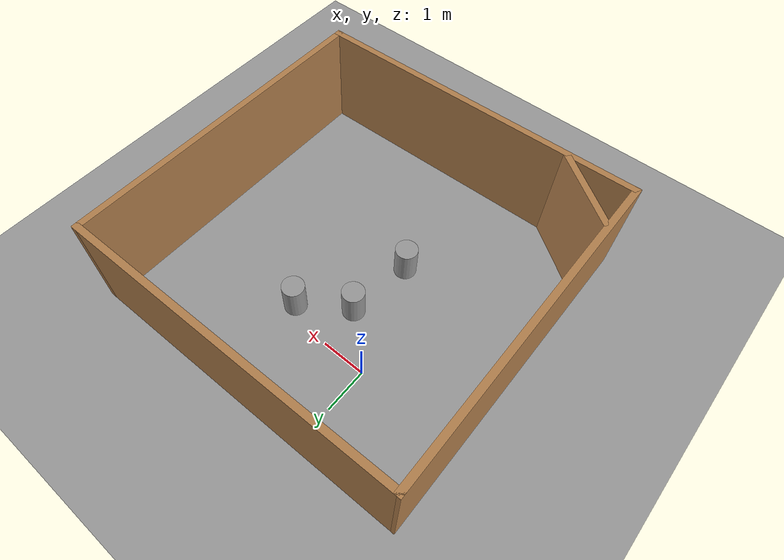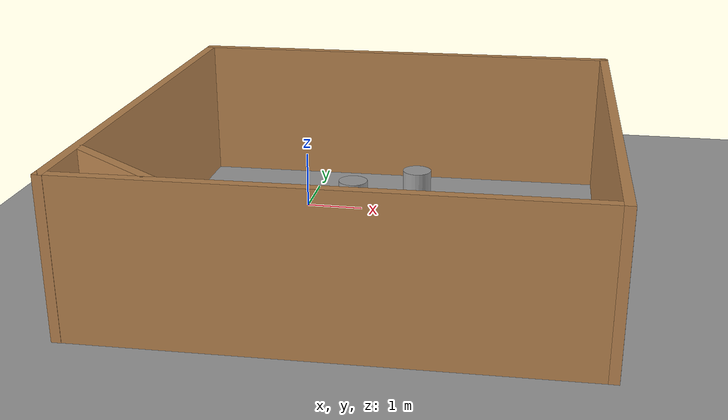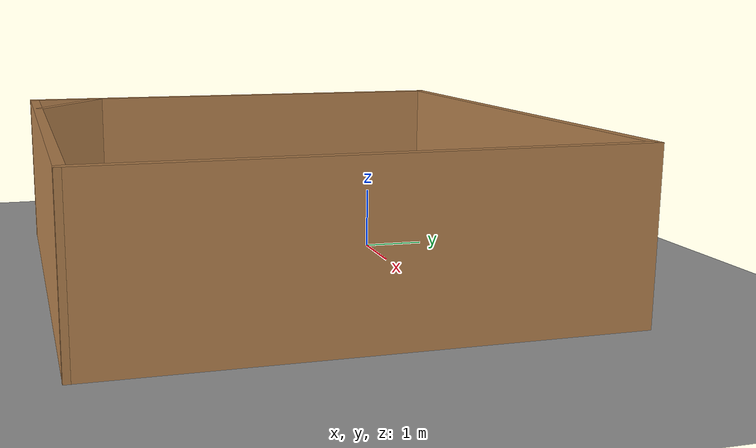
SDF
<?xml version='1.0'?>
<sdf version='1.7'>
  <model name='three_pillars'>
    <link name='Wall_87'>
      <pose>-1.55442 -4.97404 0 0 0 -0.624849</pose>
      <self_collide>0</self_collide>
      <kinematic>0</kinematic>
      <enable_wind>0</enable_wind>
      <gravity>1</gravity>
      <inertial>
        <mass>1.86085</mass>
        <pose>0 0 0 0 -0 0</pose>
        <inertia>
          <ixx>0.972681</ixx>
          <ixy>0</ixy>
          <ixz>0</ixz>
          <iyy>1.50617</iyy>
          <iyz>0</iyz>
          <izz>0.540464</izz>
        </inertia>
      </inertial>
      <visual name='Wall_87_Visual'>
        <pose>0 0 1.25 0 -0 0</pose>
        <geometry>
          <box>
            <size>1.86085 0.15 2.5</size>
          </box>
        </geometry>
        <material>
          <script>
            <uri>file://media/materials/scripts/gazebo.material</uri>
            <name>Gazebo/Wood</name>
          </script>
          <ambient>1 1 1 1</ambient>
          <diffuse>1 1 1 1</diffuse>
          <specular>0.2 0.2 0.2 1</specular>
          <emissive>0 0 0 1</emissive>
          <shader type='pixel'>
            <normal_map>__default__</normal_map>
          </shader>
        </material>
        <cast_shadows>1</cast_shadows>
        <transparency>0</transparency>
      </visual>
      <collision name='Wall_87_Collision'>
        <laser_retro>0</laser_retro>
        <max_contacts>10</max_contacts>
        <pose>0 0 1.25 0 -0 0</pose>
        <geometry>
          <box>
            <size>1.86085 0.15 2.5</size>
          </box>
        </geometry>
        <surface>
          <friction>
            <ode>
              <mu>1</mu>
              <mu2>1</mu2>
              <fdir1>0 0 0</fdir1>
              <slip1>0</slip1>
              <slip2>0</slip2>
            </ode>
            <torsional>
              <coefficient>1</coefficient>
              <patch_radius>0</patch_radius>
              <surface_radius>0</surface_radius>
              <use_patch_radius>1</use_patch_radius>
              <ode>
                <slip>0</slip>
              </ode>
            </torsional>
          </friction>
          <bounce>
            <restitution_coefficient>0</restitution_coefficient>
            <threshold>1e+06</threshold>
          </bounce>
          <contact>
            <collide_without_contact>0</collide_without_contact>
            <collide_without_contact_bitmask>1</collide_without_contact_bitmask>
            <collide_bitmask>1</collide_bitmask>
            <ode>
              <soft_cfm>0</soft_cfm>
              <soft_erp>0.2</soft_erp>
              <kp>1e+13</kp>
              <kd>1</kd>
              <max_vel>0.01</max_vel>
              <min_depth>0</min_depth>
            </ode>
            <bullet>
              <split_impulse>1</split_impulse>
              <split_impulse_penetration_threshold>-0.01</split_impulse_penetration_threshold>
              <soft_cfm>0</soft_cfm>
              <soft_erp>0.2</soft_erp>
              <kp>1e+13</kp>
              <kd>1</kd>
            </bullet>
          </contact>
        </surface>
      </collision>
    </link>
    <link name='Wall_93_clone'>
      <pose>5.29879 -1.68588 0 0 0 -1.5708</pose>
      <self_collide>0</self_collide>
      <kinematic>0</kinematic>
      <enable_wind>0</enable_wind>
      <gravity>1</gravity>
      <inertial>
        <mass>1.44767</mass>
        <pose>0 0 0 0 -0 0</pose>
        <inertia>
          <ixx>0.756709</ixx>
          <ixy>0</ixy>
          <ixz>0</ixz>
          <iyy>7.72259</iyy>
          <iyz>0</iyz>
          <izz>6.97131</izz>
        </inertia>
      </inertial>
      <visual name='Wall_93_Visual'>
        <pose>0 0 1.25 0 -0 0</pose>
        <geometry>
          <box>
            <size>7.60026 0.15 2.5</size>
          </box>
        </geometry>
        <material>
          <script>
            <uri>file://media/materials/scripts/gazebo.material</uri>
            <name>Gazebo/Wood</name>
          </script>
          <ambient>1 1 1 1</ambient>
          <diffuse>1 1 1 1</diffuse>
          <specular>0.2 0.2 0.2 1</specular>
          <emissive>0 0 0 1</emissive>
          <shader type='pixel'>
            <normal_map>__default__</normal_map>
          </shader>
        </material>
        <cast_shadows>1</cast_shadows>
        <transparency>0</transparency>
      </visual>
      <collision name='Wall_93_Collision'>
        <laser_retro>0</laser_retro>
        <max_contacts>10</max_contacts>
        <pose>0 0 1.25 0 -0 0</pose>
        <geometry>
          <box>
            <size>7.60026 0.15 2.5</size>
          </box>
        </geometry>
        <surface>
          <friction>
            <ode>
              <mu>1</mu>
              <mu2>1</mu2>
              <fdir1>0 0 0</fdir1>
              <slip1>0</slip1>
              <slip2>0</slip2>
            </ode>
            <torsional>
              <coefficient>1</coefficient>
              <patch_radius>0</patch_radius>
              <surface_radius>0</surface_radius>
              <use_patch_radius>1</use_patch_radius>
              <ode>
                <slip>0</slip>
              </ode>
            </torsional>
          </friction>
          <bounce>
            <restitution_coefficient>0</restitution_coefficient>
            <threshold>1e+06</threshold>
          </bounce>
          <contact>
            <collide_without_contact>0</collide_without_contact>
            <collide_without_contact_bitmask>1</collide_without_contact_bitmask>
            <collide_bitmask>1</collide_bitmask>
            <ode>
              <soft_cfm>0</soft_cfm>
              <soft_erp>0.2</soft_erp>
              <kp>1e+13</kp>
              <kd>1</kd>
              <max_vel>0.01</max_vel>
              <min_depth>0</min_depth>
            </ode>
            <bullet>
              <split_impulse>1</split_impulse>
              <split_impulse_penetration_threshold>-0.01</split_impulse_penetration_threshold>
              <soft_cfm>0</soft_cfm>
              <soft_erp>0.2</soft_erp>
              <kp>1e+13</kp>
              <kd>1</kd>
            </bullet>
          </contact>
        </surface>
      </collision>
    </link>
    <link name='Wall_93_clone_clone'>
      <pose>1.48219 1.95907 0 0 -0 0.020613</pose>
      <self_collide>0</self_collide>
      <kinematic>0</kinematic>
      <enable_wind>0</enable_wind>
      <inertial>
        <inertia>
          <ixx>0</ixx>
          <ixy>0</ixy>
          <ixz>0</ixz>
          <iyy>0</iyy>
          <iyz>0</iyz>
          <izz>0</izz>
        </inertia>
        <mass>0</mass>
        <pose>0 0 0 0 -0 0</pose>
      </inertial>
      <visual name='Wall_93_Visual'>
        <pose>0 0 1.25 0 -0 0</pose>
        <geometry>
          <box>
            <size>7.78179 0.15 2.5</size>
          </box>
        </geometry>
        <material>
          <script>
            <uri>file://media/materials/scripts/gazebo.material</uri>
            <name>Gazebo/Wood</name>
          </script>
          <ambient>1 1 1 1</ambient>
          <diffuse>1 1 1 1</diffuse>
          <specular>0.2 0.2 0.2 1</specular>
          <emissive>0 0 0 1</emissive>
          <shader type='pixel'/>
        </material>
        <cast_shadows>1</cast_shadows>
        <transparency>0</transparency>
      </visual>
      <collision name='Wall_93_Collision'>
        <laser_retro>0</laser_retro>
        <max_contacts>10</max_contacts>
        <pose>0 0 1.25 0 -0 0</pose>
        <geometry>
          <box>
            <size>7.78179 0.15 2.5</size>
          </box>
        </geometry>
        <surface>
          <friction>
            <ode>
              <mu>1</mu>
              <mu2>1</mu2>
              <fdir1>0 0 0</fdir1>
              <slip1>0</slip1>
              <slip2>0</slip2>
            </ode>
            <torsional>
              <coefficient>1</coefficient>
              <patch_radius>0</patch_radius>
              <surface_radius>0</surface_radius>
              <use_patch_radius>1</use_patch_radius>
              <ode>
                <slip>0</slip>
              </ode>
            </torsional>
          </friction>
          <bounce>
            <restitution_coefficient>0</restitution_coefficient>
            <threshold>1e+06</threshold>
          </bounce>
          <contact>
            <collide_without_contact>0</collide_without_contact>
            <collide_without_contact_bitmask>1</collide_without_contact_bitmask>
            <collide_bitmask>1</collide_bitmask>
            <ode>
              <soft_cfm>0</soft_cfm>
              <soft_erp>0.2</soft_erp>
              <kp>1e+13</kp>
              <kd>1</kd>
              <max_vel>0.01</max_vel>
              <min_depth>0</min_depth>
            </ode>
            <bullet>
              <split_impulse>1</split_impulse>
              <split_impulse_penetration_threshold>-0.01</split_impulse_penetration_threshold>
              <soft_cfm>0</soft_cfm>
              <soft_erp>0.2</soft_erp>
              <kp>1e+13</kp>
              <kd>1</kd>
            </bullet>
          </contact>
        </surface>
      </collision>
    </link>
    <link name='Wall_93_clone_clone_0'>
      <pose>-2.33541 -1.84455 0 0 0 -1.5708</pose>
      <self_collide>0</self_collide>
      <kinematic>0</kinematic>
      <enable_wind>0</enable_wind>
      <gravity>1</gravity>
      <inertial>
        <mass>1.44767</mass>
        <pose>0 0 0 0 -0 0</pose>
        <inertia>
          <ixx>0.756709</ixx>
          <ixy>0</ixy>
          <ixz>0</ixz>
          <iyy>7.72259</iyy>
          <iyz>0</iyz>
          <izz>6.97131</izz>
        </inertia>
      </inertial>
      <visual name='Wall_93_Visual'>
        <pose>0 0 1.25 0 -0 0</pose>
        <geometry>
          <box>
            <size>7.60026 0.15 2.5</size>
          </box>
        </geometry>
        <material>
          <script>
            <uri>file://media/materials/scripts/gazebo.material</uri>
            <name>Gazebo/Wood</name>
          </script>
          <ambient>1 1 1 1</ambient>
          <diffuse>1 1 1 1</diffuse>
          <specular>0.2 0.2 0.2 1</specular>
          <emissive>0 0 0 1</emissive>
          <shader type='pixel'>
            <normal_map>__default__</normal_map>
          </shader>
        </material>
        <cast_shadows>1</cast_shadows>
        <transparency>0</transparency>
      </visual>
      <collision name='Wall_93_Collision'>
        <laser_retro>0</laser_retro>
        <max_contacts>10</max_contacts>
        <pose>0 0 1.25 0 -0 0</pose>
        <geometry>
          <box>
            <size>7.60026 0.15 2.5</size>
          </box>
        </geometry>
        <surface>
          <friction>
            <ode>
              <mu>1</mu>
              <mu2>1</mu2>
              <fdir1>0 0 0</fdir1>
              <slip1>0</slip1>
              <slip2>0</slip2>
            </ode>
            <torsional>
              <coefficient>1</coefficient>
              <patch_radius>0</patch_radius>
              <surface_radius>0</surface_radius>
              <use_patch_radius>1</use_patch_radius>
              <ode>
                <slip>0</slip>
              </ode>
            </torsional>
          </friction>
          <bounce>
            <restitution_coefficient>0</restitution_coefficient>
            <threshold>1e+06</threshold>
          </bounce>
          <contact>
            <collide_without_contact>0</collide_without_contact>
            <collide_without_contact_bitmask>1</collide_without_contact_bitmask>
            <collide_bitmask>1</collide_bitmask>
            <ode>
              <soft_cfm>0</soft_cfm>
              <soft_erp>0.2</soft_erp>
              <kp>1e+13</kp>
              <kd>1</kd>
              <max_vel>0.01</max_vel>
              <min_depth>0</min_depth>
            </ode>
            <bullet>
              <split_impulse>1</split_impulse>
              <split_impulse_penetration_threshold>-0.01</split_impulse_penetration_threshold>
              <soft_cfm>0</soft_cfm>
              <soft_erp>0.2</soft_erp>
              <kp>1e+13</kp>
              <kd>1</kd>
            </bullet>
          </contact>
        </surface>
      </collision>
    </link>
    <link name='Wall_93_clone_clone_clone'>
      <pose>1.48412 -5.48715 0 0 -0 0.020613</pose>
      <self_collide>0</self_collide>
      <kinematic>0</kinematic>
      <enable_wind>0</enable_wind>
      <inertial>
        <inertia>
          <ixx>0</ixx>
          <ixy>0</ixy>
          <ixz>0</ixz>
          <iyy>0</iyy>
          <iyz>0</iyz>
          <izz>0</izz>
        </inertia>
        <mass>0</mass>
        <pose>0 0 0 0 -0 0</pose>
      </inertial>
      <visual name='Wall_93_Visual'>
        <pose>0 0 1.25 0 -0 0</pose>
        <geometry>
          <box>
            <size>7.78179 0.15 2.5</size>
          </box>
        </geometry>
        <material>
          <script>
            <uri>file://media/materials/scripts/gazebo.material</uri>
            <name>Gazebo/Wood</name>
          </script>
          <ambient>1 1 1 1</ambient>
          <diffuse>1 1 1 1</diffuse>
          <specular>0.2 0.2 0.2 1</specular>
          <emissive>0 0 0 1</emissive>
          <shader type='pixel'/>
        </material>
        <cast_shadows>1</cast_shadows>
        <transparency>0</transparency>
      </visual>
      <collision name='Wall_93_Collision'>
        <laser_retro>0</laser_retro>
        <max_contacts>10</max_contacts>
        <pose>0 0 1.25 0 -0 0</pose>
        <geometry>
          <box>
            <size>7.78179 0.15 2.5</size>
          </box>
        </geometry>
        <surface>
          <friction>
            <ode>
              <mu>1</mu>
              <mu2>1</mu2>
              <fdir1>0 0 0</fdir1>
              <slip1>0</slip1>
              <slip2>0</slip2>
            </ode>
            <torsional>
              <coefficient>1</coefficient>
              <patch_radius>0</patch_radius>
              <surface_radius>0</surface_radius>
              <use_patch_radius>1</use_patch_radius>
              <ode>
                <slip>0</slip>
              </ode>
            </torsional>
          </friction>
          <bounce>
            <restitution_coefficient>0</restitution_coefficient>
            <threshold>1e+06</threshold>
          </bounce>
          <contact>
            <collide_without_contact>0</collide_without_contact>
            <collide_without_contact_bitmask>1</collide_without_contact_bitmask>
            <collide_bitmask>1</collide_bitmask>
            <ode>
              <soft_cfm>0</soft_cfm>
              <soft_erp>0.2</soft_erp>
              <kp>1e+13</kp>
              <kd>1</kd>
              <max_vel>0.01</max_vel>
              <min_depth>0</min_depth>
            </ode>
            <bullet>
              <split_impulse>1</split_impulse>
              <split_impulse_penetration_threshold>-0.01</split_impulse_penetration_threshold>
              <soft_cfm>0</soft_cfm>
              <soft_erp>0.2</soft_erp>
              <kp>1e+13</kp>
              <kd>1</kd>
            </bullet>
          </contact>
        </surface>
      </collision>
    </link>
    <link name='link_0'>
      <inertial>
        <mass>1</mass>
        <inertia>
          <ixx>0.145833</ixx>
          <ixy>0</ixy>
          <ixz>0</ixz>
          <iyy>0.145833</iyy>
          <iyz>0</iyz>
          <izz>0.125</izz>
        </inertia>
        <pose>0 0 0 0 -0 0</pose>
      </inertial>
      <pose>1.02666 -0.943297 0.5 0 -0 0</pose>
      <gravity>1</gravity>
      <self_collide>0</self_collide>
      <kinematic>0</kinematic>
      <enable_wind>0</enable_wind>
      <visual name='visual'>
        <pose>0 0 0 0 -0 0</pose>
        <geometry>
          <cylinder>
            <radius>0.25</radius>
            <length>0.8</length>
          </cylinder>
        </geometry>
        <material>
          <lighting>1</lighting>
          <script>
            <uri>file://media/materials/scripts/gazebo.material</uri>
            <name>Gazebo/Grey</name>
          </script>
          <shader type='pixel'>
            <normal_map>__default__</normal_map>
          </shader>
          <ambient>0.3 0.3 0.3 1</ambient>
          <diffuse>0.7 0.7 0.7 1</diffuse>
          <specular>0.01 0.01 0.01 1</specular>
          <emissive>0 0 0 1</emissive>
        </material>
        <transparency>0</transparency>
        <cast_shadows>1</cast_shadows>
      </visual>
      <collision name='collision'>
        <laser_retro>0</laser_retro>
        <max_contacts>10</max_contacts>
        <pose>0 0 0 0 -0 0</pose>
        <geometry>
          <cylinder>
            <radius>0.25</radius>
            <length>0.8</length>
          </cylinder>
        </geometry>
        <surface>
          <friction>
            <ode>
              <mu>1</mu>
              <mu2>1</mu2>
              <fdir1>0 0 0</fdir1>
              <slip1>0</slip1>
              <slip2>0</slip2>
            </ode>
            <torsional>
              <coefficient>1</coefficient>
              <patch_radius>0</patch_radius>
              <surface_radius>0</surface_radius>
              <use_patch_radius>1</use_patch_radius>
              <ode>
                <slip>0</slip>
              </ode>
            </torsional>
          </friction>
          <bounce>
            <restitution_coefficient>0</restitution_coefficient>
            <threshold>1e+06</threshold>
          </bounce>
          <contact>
            <collide_without_contact>0</collide_without_contact>
            <collide_without_contact_bitmask>1</collide_without_contact_bitmask>
            <collide_bitmask>1</collide_bitmask>
            <ode>
              <soft_cfm>0</soft_cfm>
              <soft_erp>0.2</soft_erp>
              <kp>1e+13</kp>
              <kd>1</kd>
              <max_vel>0.01</max_vel>
              <min_depth>0</min_depth>
            </ode>
            <bullet>
              <split_impulse>1</split_impulse>
              <split_impulse_penetration_threshold>-0.01</split_impulse_penetration_threshold>
              <soft_cfm>0</soft_cfm>
              <soft_erp>0.2</soft_erp>
              <kp>1e+13</kp>
              <kd>1</kd>
            </bullet>
          </contact>
        </surface>
      </collision>
    </link>
    <link name='link_0_clone'>
      <inertial>
        <mass>1</mass>
        <inertia>
          <ixx>0.145833</ixx>
          <ixy>0</ixy>
          <ixz>0</ixz>
          <iyy>0.145833</iyy>
          <iyz>0</iyz>
          <izz>0.125</izz>
        </inertia>
        <pose>0 0 0 0 -0 0</pose>
      </inertial>
      <pose>0.839333 -2.47396 0.5 0 -0 0</pose>
      <gravity>1</gravity>
      <self_collide>0</self_collide>
      <kinematic>0</kinematic>
      <enable_wind>0</enable_wind>
      <visual name='visual'>
        <pose>0 0 0 0 -0 0</pose>
        <geometry>
          <cylinder>
            <radius>0.25</radius>
            <length>0.8</length>
          </cylinder>
        </geometry>
        <material>
          <lighting>1</lighting>
          <script>
            <uri>file://media/materials/scripts/gazebo.material</uri>
            <name>Gazebo/Grey</name>
          </script>
          <shader type='pixel'>
            <normal_map>__default__</normal_map>
          </shader>
          <ambient>0.3 0.3 0.3 1</ambient>
          <diffuse>0.7 0.7 0.7 1</diffuse>
          <specular>0.01 0.01 0.01 1</specular>
          <emissive>0 0 0 1</emissive>
        </material>
        <transparency>0</transparency>
        <cast_shadows>1</cast_shadows>
      </visual>
      <collision name='collision'>
        <laser_retro>0</laser_retro>
        <max_contacts>10</max_contacts>
        <pose>0 0 0 0 -0 0</pose>
        <geometry>
          <cylinder>
            <radius>0.25</radius>
            <length>0.8</length>
          </cylinder>
        </geometry>
        <surface>
          <friction>
            <ode>
              <mu>1</mu>
              <mu2>1</mu2>
              <fdir1>0 0 0</fdir1>
              <slip1>0</slip1>
              <slip2>0</slip2>
            </ode>
            <torsional>
              <coefficient>1</coefficient>
              <patch_radius>0</patch_radius>
              <surface_radius>0</surface_radius>
              <use_patch_radius>1</use_patch_radius>
              <ode>
                <slip>0</slip>
              </ode>
            </torsional>
          </friction>
          <bounce>
            <restitution_coefficient>0</restitution_coefficient>
            <threshold>1e+06</threshold>
          </bounce>
          <contact>
            <collide_without_contact>0</collide_without_contact>
            <collide_without_contact_bitmask>1</collide_without_contact_bitmask>
            <collide_bitmask>1</collide_bitmask>
            <ode>
              <soft_cfm>0</soft_cfm>
              <soft_erp>0.2</soft_erp>
              <kp>1e+13</kp>
              <kd>1</kd>
              <max_vel>0.01</max_vel>
              <min_depth>0</min_depth>
            </ode>
            <bullet>
              <split_impulse>1</split_impulse>
              <split_impulse_penetration_threshold>-0.01</split_impulse_penetration_threshold>
              <soft_cfm>0</soft_cfm>
              <soft_erp>0.2</soft_erp>
              <kp>1e+13</kp>
              <kd>1</kd>
            </bullet>
          </contact>
        </surface>
      </collision>
    </link>
    <link name='link_0_clone_0'>
      <inertial>
        <mass>1</mass>
        <inertia>
          <ixx>0.145833</ixx>
          <ixy>0</ixy>
          <ixz>0</ixz>
          <iyy>0.145833</iyy>
          <iyz>0</iyz>
          <izz>0.125</izz>
        </inertia>
        <pose>0 0 0 0 -0 0</pose>
      </inertial>
      <pose>2.06001 -0.244676 0.5 0 -0 0</pose>
      <gravity>1</gravity>
      <self_collide>0</self_collide>
      <kinematic>0</kinematic>
      <enable_wind>0</enable_wind>
      <visual name='visual'>
        <pose>0 0 0 0 -0 0</pose>
        <geometry>
          <cylinder>
            <radius>0.25</radius>
            <length>0.8</length>
          </cylinder>
        </geometry>
        <material>
          <lighting>1</lighting>
          <script>
            <uri>file://media/materials/scripts/gazebo.material</uri>
            <name>Gazebo/Grey</name>
          </script>
          <shader type='pixel'>
            <normal_map>__default__</normal_map>
          </shader>
          <ambient>0.3 0.3 0.3 1</ambient>
          <diffuse>0.7 0.7 0.7 1</diffuse>
          <specular>0.01 0.01 0.01 1</specular>
          <emissive>0 0 0 1</emissive>
        </material>
        <transparency>0</transparency>
        <cast_shadows>1</cast_shadows>
      </visual>
      <collision name='collision'>
        <laser_retro>0</laser_retro>
        <max_contacts>10</max_contacts>
        <pose>0 0 0 0 -0 0</pose>
        <geometry>
          <cylinder>
            <radius>0.25</radius>
            <length>0.8</length>
          </cylinder>
        </geometry>
        <surface>
          <friction>
            <ode>
              <mu>1</mu>
              <mu2>1</mu2>
              <fdir1>0 0 0</fdir1>
              <slip1>0</slip1>
              <slip2>0</slip2>
            </ode>
            <torsional>
              <coefficient>1</coefficient>
              <patch_radius>0</patch_radius>
              <surface_radius>0</surface_radius>
              <use_patch_radius>1</use_patch_radius>
              <ode>
                <slip>0</slip>
              </ode>
            </torsional>
          </friction>
          <bounce>
            <restitution_coefficient>0</restitution_coefficient>
            <threshold>1e+06</threshold>
          </bounce>
          <contact>
            <collide_without_contact>0</collide_without_contact>
            <collide_without_contact_bitmask>1</collide_without_contact_bitmask>
            <collide_bitmask>1</collide_bitmask>
            <ode>
              <soft_cfm>0</soft_cfm>
              <soft_erp>0.2</soft_erp>
              <kp>1e+13</kp>
              <kd>1</kd>
              <max_vel>0.01</max_vel>
              <min_depth>0</min_depth>
            </ode>
            <bullet>
              <split_impulse>1</split_impulse>
              <split_impulse_penetration_threshold>-0.01</split_impulse_penetration_threshold>
              <soft_cfm>0</soft_cfm>
              <soft_erp>0.2</soft_erp>
              <kp>1e+13</kp>
              <kd>1</kd>
            </bullet>
          </contact>
        </surface>
      </collision>
    </link>
    <model name='ground_plane'>
      <static>1</static>
      <link name='link'>
        <collision name='collision'>
          <geometry>
            <plane>
              <normal>0 0 1</normal>
              <size>100 100</size>
            </plane>
          </geometry>
          <surface>
            <contact>
              <collide_bitmask>65535</collide_bitmask>
            </contact>
            <friction>
              <ode>
                <mu>100</mu>
                <mu2>50</mu2>
              </ode>
            </friction>
          </surface>
        </collision>
        <visual name='visual'>
          <cast_shadows>0</cast_shadows>
          <geometry>
            <plane>
              <normal>0 0 1</normal>
              <size>100 100</size>
            </plane>
          </geometry>
          <material>
            <script>
              <uri>file://media/materials/scripts/gazebo.material</uri>
              <name>Gazebo/Grey</name>
            </script>
          </material>
        </visual>
      </link>
      <pose>-0.331926 -6.53257 0 0 -0 0</pose>
    </model>
    <static>1</static>
    <allow_auto_disable>1</allow_auto_disable>
  </model>
</sdf>
